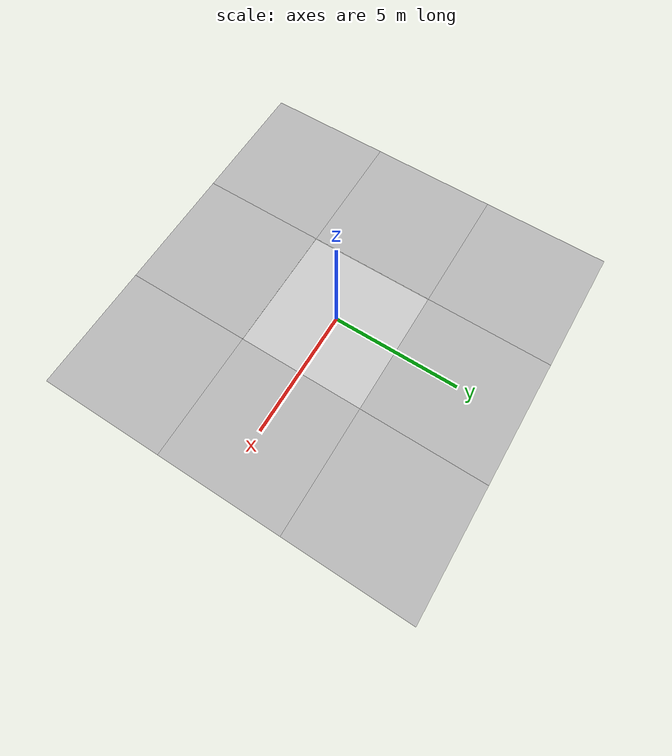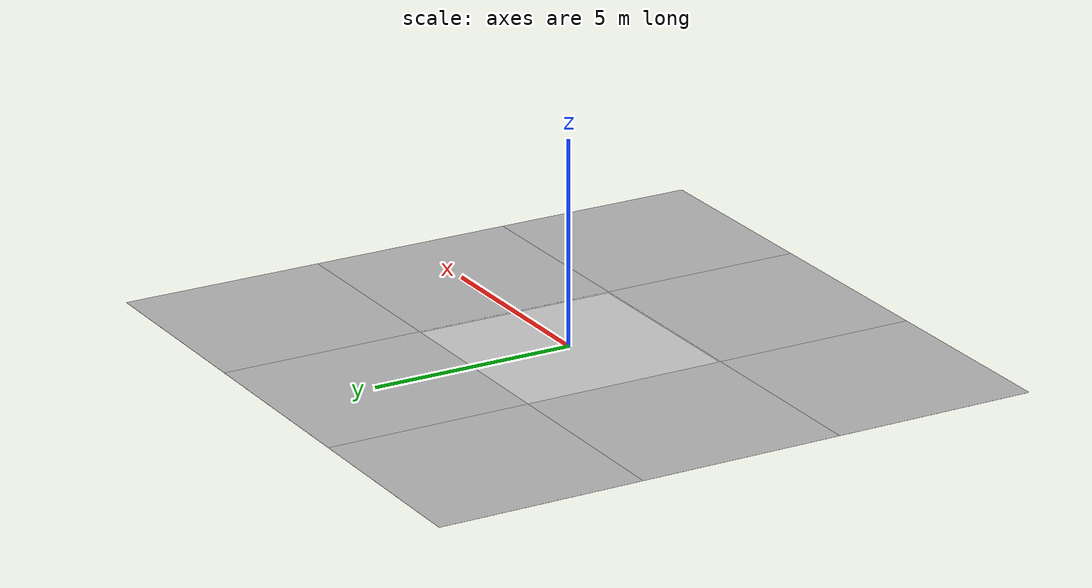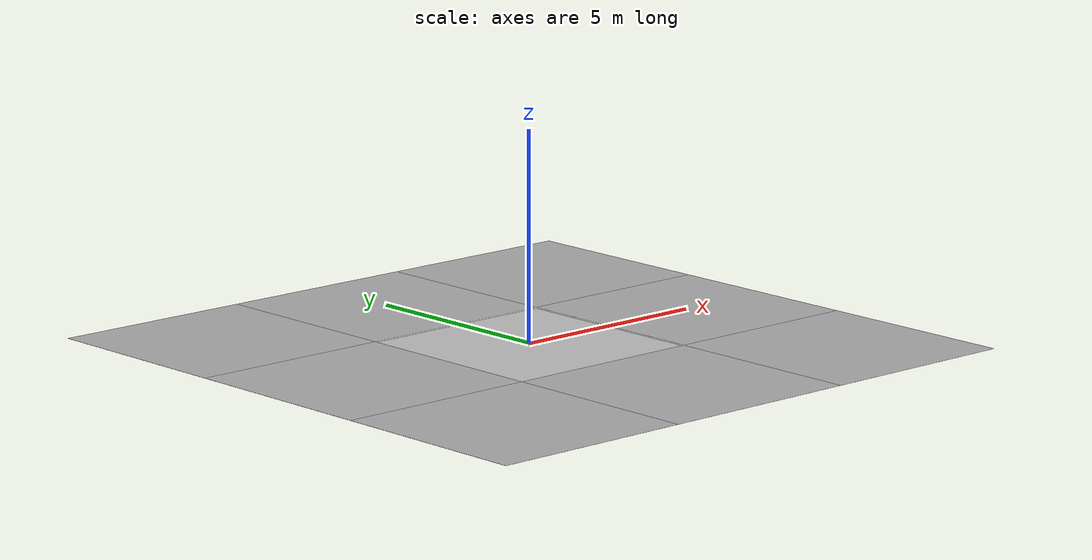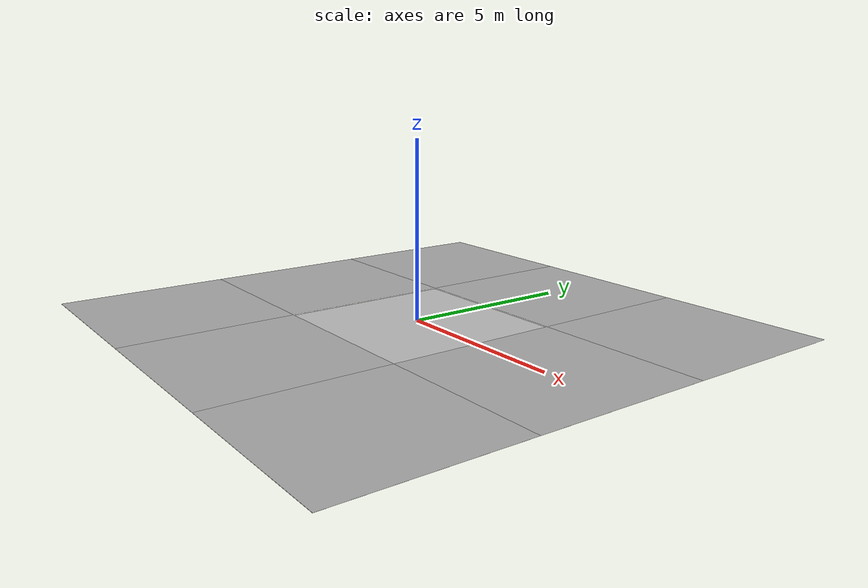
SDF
<sdf version='1.6'>
  <model name='plane_lidar'>
    <include>
      <uri>model://plane</uri>
    </include>

    <!--fpv camera-->
    <include>
      <uri>model://fpv_cam</uri>
      <pose>0.0 0 0.15 0 1.5707963259 0</pose>
    </include>

    <joint name="fpv_cam_joint" type="revolute">
      <parent>plane::base_link</parent>
      <child>fpv_cam::link</child>
      <axis>
        <xyz>0 0 1</xyz>
        <limit>
          <upper>0</upper>
          <lower>0</lower>
        </limit>
      </axis>
    </joint>
  </model>
</sdf>

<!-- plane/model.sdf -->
<sdf version='1.4'>
    <model name='plane'>
        <static>true</static>
        <link name='link'>

            <collision name='collision'>
                <geometry>
                    <plane>
                        <normal>0 0 1</normal>
                        <size>15 15</size>
                    </plane>
                </geometry>
                <surface>
                    <friction>
                        <ode>
                            <mu>100</mu>
                            <mu2>50</mu2>
                        </ode>
                    </friction>
                </surface>
            </collision>

            <visual name='visual_0'>
                <pose>0 0 0 0 0 0</pose>
                <cast_shadows>false</cast_shadows>
                <geometry>
                    <plane>
                        <normal>0 0 1</normal>
                        <size>5 5</size>
                    </plane>
                </geometry>
                <material>
                    <script>
                        <uri>model://plane/materials/scripts</uri>
                        <uri>model://plane/materials/textures</uri>
                        <name>vrc/pavement</name>
                    </script>
                </material>
            </visual>

            <visual name='visual_1'>
                <pose>0 5 0 0 0 0</pose>
                <cast_shadows>false</cast_shadows>
                <geometry>
                    <plane>
                        <normal>0 0 1</normal>
                        <size>5 5</size>
                    </plane>
                </geometry>
                <material>
                    <script>
                        <uri>model://plane/materials/scripts</uri>
                        <uri>model://plane/materials/textures</uri>
                        <name>vrc/pavement</name>
                    </script>
                </material>
            </visual>

            <visual name='visual_2'>
                <pose>0 -5 0 0 0 0</pose>
                <cast_shadows>false</cast_shadows>
                <geometry>
                    <plane>
                        <normal>0 0 1</normal>
                        <size>5 5</size>
                    </plane>
                </geometry>
                <material>
                    <script>
                        <uri>model://plane/materials/scripts</uri>
                        <uri>model://plane/materials/textures</uri>
                        <name>vrc/pavement</name>
                    </script>
                </material>
            </visual>

            <visual name='visual_3'>
                <pose>-5 -5 0 0 0 0</pose>
                <cast_shadows>false</cast_shadows>
                <geometry>
                    <plane>
                        <normal>0 0 1</normal>
                        <size>5 5</size>
                    </plane>
                </geometry>
                <material>
                    <script>
                        <uri>model://plane/materials/scripts</uri>
                        <uri>model://plane/materials/textures</uri>
                        <name>vrc/pavement</name>
                    </script>
                </material>
            </visual>

            <visual name='visual_4'>
                <pose>-5 0 0 0 0 0</pose>
                <cast_shadows>false</cast_shadows>
                <geometry>
                    <plane>
                        <normal>0 0 1</normal>
                        <size>5 5</size>
                    </plane>
                </geometry>
                <material>
                    <script>
                        <uri>model://plane/materials/scripts</uri>
                        <uri>model://plane/materials/textures</uri>
                        <name>vrc/pavement</name>
                    </script>
                </material>
            </visual>

            <visual name='visual_5'>
                <pose>-5 5 0 0 0 0</pose>
                <cast_shadows>false</cast_shadows>
                <geometry>
                    <plane>
                        <normal>0 0 1</normal>
                        <size>5 5</size>
                    </plane>
                </geometry>
                <material>
                    <script>
                        <uri>model://plane/materials/scripts</uri>
                        <uri>model://plane/materials/textures</uri>
                        <name>vrc/pavement</name>
                    </script>
                </material>
            </visual>

            <visual name='visual_6'>
                <pose>5 -5 0 0 0 0</pose>
                <cast_shadows>false</cast_shadows>
                <geometry>
                    <plane>
                        <normal>0 0 1</normal>
                        <size>5 5</size>
                    </plane>
                </geometry>
                <material>
                    <script>
                        <uri>model://plane/materials/scripts</uri>
                        <uri>model://plane/materials/textures</uri>
                        <name>vrc/pavement</name>
                    </script>
                </material>
            </visual>

            <visual name='visual_7'>
                <pose>5 0 0 0 0 0</pose>
                <cast_shadows>false</cast_shadows>
                <geometry>
                    <plane>
                        <normal>0 0 1</normal>
                        <size>5 5</size>
                    </plane>
                </geometry>
                <material>
                    <script>
                        <uri>model://plane/materials/scripts</uri>
                        <uri>model://plane/materials/textures</uri>
                        <name>vrc/pavement</name>
                    </script>
                </material>
            </visual>

            <visual name='visual_8'>
                <pose>5 5 0 0 0 0</pose>
                <cast_shadows>false</cast_shadows>
                <geometry>
                    <plane>
                        <normal>0 0 1</normal>
                        <size>5 5</size>
                    </plane>
                </geometry>
                <material>
                    <script>
                        <uri>model://plane/materials/scripts</uri>
                        <uri>model://plane/materials/textures</uri>
                        <name>vrc/pavement</name>
                    </script>
                </material>
            </visual>

        </link>
    </model>
</sdf>

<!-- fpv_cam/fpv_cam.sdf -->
<sdf version='1.6'>
    <model name='fpv_cam'>
      <link name='link'>
        <inertial>
          <mass>0.015</mass>
          <inertia>
            <ixx>4.15e-6</ixx>
          <ixy>0</ixy>
          <ixz>0</ixz>
          <iyy>2.407e-6</iyy>
          <iyz>0</iyz>
          <izz>2.407e-6</izz>
          </inertia>
        </inertial>
        <collision name='collision'>
          <geometry>
            <box>
              <size>0.01 0.01 0.01</size>
            </box>
          </geometry>
          <max_contacts>10</max_contacts>
          <surface>
            <contact>
              <ode/>
            </contact>
            <bounce/>
            <friction>
              <ode/>
            </friction>
          </surface>
        </collision>
        <visual name='visual'>
          <geometry>
            <box>
              <size>0.01 0.01 0.01</size>
            </box>
          </geometry>
        </visual>
        <sensor name='camera' type='camera'>
          <camera name='__default__'>
            <horizontal_fov>1.47337974</horizontal_fov>
            <image>
              <width>752</width>
              <height>480</height>
            </image>
            <clip>
              <near>0.1</near>
              <far>500</far>
            </clip>
          </camera>
          <always_on>1</always_on>
          <update_rate>50</update_rate>
          <visualize>1</visualize>
          <plugin name='camera_plugin' filename='libgazebo_ros_camera.so'>
            <robotNamespace></robotNamespace>
            <alwaysOn>true</alwaysOn>
            <imageTopicName>image_raw</imageTopicName>
            <cameraInfoTopicName>camera_info</cameraInfoTopicName>
            <cameraName>usb_cam</cameraName>
            <frameName>/robot_camera_link</frameName>
            <CxPrime>348.804988</CxPrime>
            <Cx>348.804988</Cx>
            <Cy>240.076451</Cy>
            <hackBaseline>0</hackBaseline>
            <focalLength>414.536039</focalLength>
            <distortionK1>0.0</distortionK1>
            <distortionK2>0.0</distortionK2>
            <distortionK3>0.0</distortionK3>
            <distortionT1>0.0</distortionT1>
            <distortionT2>0.0</distortionT2>
          </plugin>
          <!-- GStreamer camera plugin (needs a lot of CPU! Consider lowering the
             camera image size) -->
          <plugin name="GstCameraPlugin" filename="libgazebo_gst_camera_plugin.so">
            <robotNamespace></robotNamespace>
            <udpHost>10.11.3.33</udpHost>
            <udpPort>5600</udpPort>
          </plugin>
        </sensor>
        <self_collide>0</self_collide>
        <kinematic>0</kinematic>
      </link>
  </model>
</sdf>
